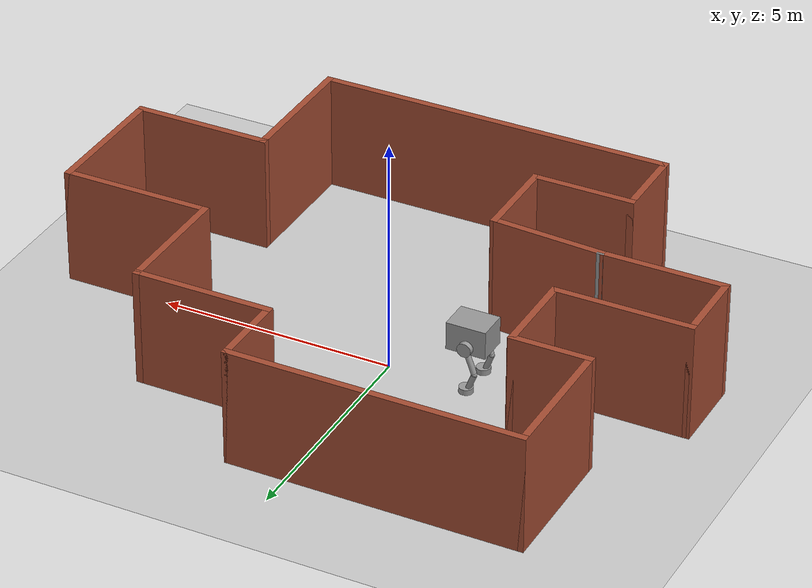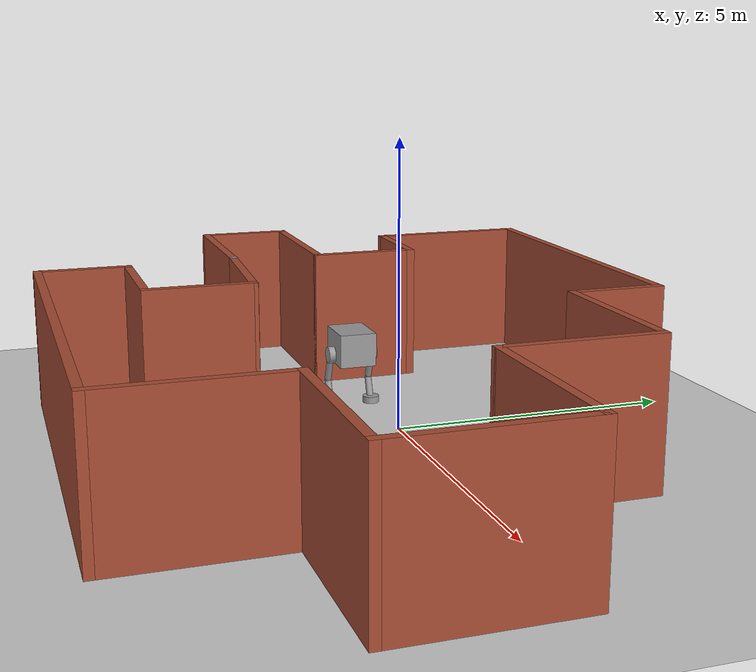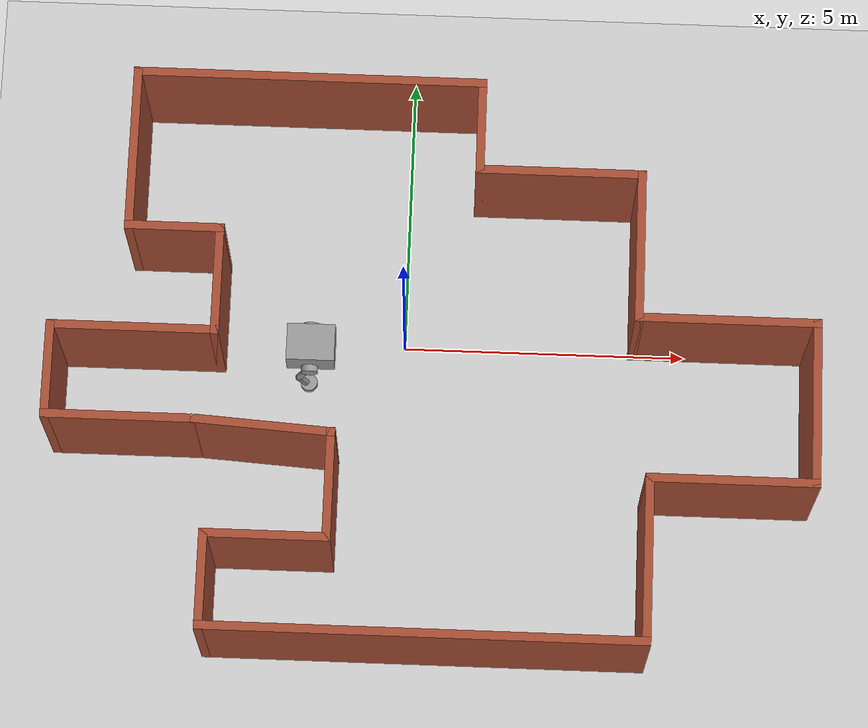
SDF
<?xml version="1.0" ?>

<sdf version="1.4">

  <world name="default">

    <include>
      <uri>model://ground_plane</uri>
    </include>

    <!-- My world -->
    <include>
      <uri>model://worlds/myworld</uri>
    </include>

    <!-- My robot -->
    <include>
      <uri>model://robot/model</uri>
    </include>

    <!-- Light source -->
    <include>
      <uri>model://sun</uri>
    </include>

    <!-- World camera -->
    <gui fullscreen='0'>
      <camera name='world_camera'>
        <pose>4.927360 -4.376610 3.740080 0.000000 0.275643 2.356190</pose>
        <view_controller>orbit</view_controller>
      </camera>
    </gui>

  </world>
</sdf>

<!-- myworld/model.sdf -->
<sdf version='1.7'>
  <model name='myworld'>
    <pose>0.52 -0.73 0 0 -0 0</pose>
    <link name='Wall_0'>
      <collision name='Wall_0_Collision'>
        <geometry>
          <box>
            <size>2.75 0.15 2.5</size>
          </box>
        </geometry>
        <pose>0 0 1.25 0 -0 0</pose>
      </collision>
      <visual name='Wall_0_Visual'>
        <pose>0 0 1.25 0 -0 0</pose>
        <geometry>
          <box>
            <size>2.75 0.15 2.5</size>
          </box>
        </geometry>
        <material>
          <script>
            <uri>file://media/materials/scripts/gazebo.material</uri>
            <name>Gazebo/Bricks</name>
          </script>
          <ambient>1 1 1 1</ambient>
        </material>
        <meta>
          <layer>0</layer>
        </meta>
      </visual>
      <pose>-5.35 -1.35 0 0 -0 3.14159</pose>
    </link>
    <link name='Wall_1'>
      <collision name='Wall_1_Collision'>
        <geometry>
          <box>
            <size>1.75 0.15 2.5</size>
          </box>
        </geometry>
        <pose>0 0 1.25 0 -0 0</pose>
      </collision>
      <visual name='Wall_1_Visual'>
        <pose>0 0 1.25 0 -0 0</pose>
        <geometry>
          <box>
            <size>1.75 0.15 2.5</size>
          </box>
        </geometry>
        <material>
          <script>
            <uri>file://media/materials/scripts/gazebo.material</uri>
            <name>Gazebo/Bricks</name>
          </script>
          <ambient>1 1 1 1</ambient>
        </material>
        <meta>
          <layer>0</layer>
        </meta>
      </visual>
      <pose>-6.65 -0.55 0 0 -0 1.5708</pose>
    </link>
    <link name='Wall_10'>
      <collision name='Wall_10_Collision'>
        <geometry>
          <box>
            <size>3.25 0.15 2.5</size>
          </box>
        </geometry>
        <pose>0 0 1.25 0 -0 0</pose>
      </collision>
      <visual name='Wall_10_Visual'>
        <pose>0 0 1.25 0 -0 0</pose>
        <geometry>
          <box>
            <size>3.25 0.15 2.5</size>
          </box>
        </geometry>
        <material>
          <script>
            <uri>file://media/materials/scripts/gazebo.material</uri>
            <name>Gazebo/Bricks</name>
          </script>
          <ambient>1 1 1 1</ambient>
        </material>
        <meta>
          <layer>0</layer>
        </meta>
      </visual>
      <pose>5.1 0.75 0 0 -0 0</pose>
    </link>
    <link name='Wall_11'>
      <collision name='Wall_11_Collision'>
        <geometry>
          <box>
            <size>3 0.15 2.5</size>
          </box>
        </geometry>
        <pose>0 0 1.25 0 -0 0</pose>
      </collision>
      <visual name='Wall_11_Visual'>
        <pose>0 0 1.25 0 -0 0</pose>
        <geometry>
          <box>
            <size>3 0.15 2.5</size>
          </box>
        </geometry>
        <material>
          <script>
            <uri>file://media/materials/scripts/gazebo.material</uri>
            <name>Gazebo/Bricks</name>
          </script>
          <ambient>1 1 1 1</ambient>
        </material>
        <meta>
          <layer>0</layer>
        </meta>
      </visual>
      <pose>6.65 -0.675 0 0 -0 -1.5708</pose>
    </link>
    <link name='Wall_12'>
      <collision name='Wall_12_Collision'>
        <geometry>
          <box>
            <size>3 0.15 2.5</size>
          </box>
        </geometry>
        <pose>0 0 1.25 0 -0 0</pose>
      </collision>
      <visual name='Wall_12_Visual'>
        <pose>0 0 1.25 0 -0 0</pose>
        <geometry>
          <box>
            <size>3 0.15 2.5</size>
          </box>
        </geometry>
        <material>
          <script>
            <uri>file://media/materials/scripts/gazebo.material</uri>
            <name>Gazebo/Bricks</name>
          </script>
          <ambient>1 1 1 1</ambient>
        </material>
        <meta>
          <layer>0</layer>
        </meta>
      </visual>
      <pose>5.225 -2.1 0 0 -0 3.14159</pose>
    </link>
    <link name='Wall_13'>
      <collision name='Wall_13_Collision'>
        <geometry>
          <box>
            <size>3 0.15 2.5</size>
          </box>
        </geometry>
        <pose>0 0 1.25 0 -0 0</pose>
      </collision>
      <visual name='Wall_13_Visual'>
        <pose>0 0 1.25 0 -0 0</pose>
        <geometry>
          <box>
            <size>3 0.15 2.5</size>
          </box>
        </geometry>
        <material>
          <script>
            <uri>file://media/materials/scripts/gazebo.material</uri>
            <name>Gazebo/Bricks</name>
          </script>
          <ambient>1 1 1 1</ambient>
        </material>
        <meta>
          <layer>0</layer>
        </meta>
      </visual>
      <pose>3.8 -3.525 0 0 -0 -1.5708</pose>
    </link>
    <link name='Wall_14'>
      <collision name='Wall_14_Collision'>
        <geometry>
          <box>
            <size>7.75 0.15 2.5</size>
          </box>
        </geometry>
        <pose>0 0 1.25 0 -0 0</pose>
      </collision>
      <visual name='Wall_14_Visual'>
        <pose>0 0 1.25 0 -0 0</pose>
        <geometry>
          <box>
            <size>7.75 0.15 2.5</size>
          </box>
        </geometry>
        <material>
          <script>
            <uri>file://media/materials/scripts/gazebo.material</uri>
            <name>Gazebo/Bricks</name>
          </script>
          <ambient>1 1 1 1</ambient>
        </material>
        <meta>
          <layer>0</layer>
        </meta>
      </visual>
      <pose>0 -4.95 0 0 -0 3.14159</pose>
    </link>
    <link name='Wall_15'>
      <collision name='Wall_15_Collision'>
        <geometry>
          <box>
            <size>1.75 0.15 2.5</size>
          </box>
        </geometry>
        <pose>0 0 1.25 0 -0 0</pose>
      </collision>
      <visual name='Wall_15_Visual'>
        <pose>0 0 1.25 0 -0 0</pose>
        <geometry>
          <box>
            <size>1.75 0.15 2.5</size>
          </box>
        </geometry>
        <material>
          <script>
            <uri>file://media/materials/scripts/gazebo.material</uri>
            <name>Gazebo/Bricks</name>
          </script>
          <ambient>1 1 1 1</ambient>
        </material>
        <meta>
          <layer>0</layer>
        </meta>
      </visual>
      <pose>-3.8 -4.15 0 0 -0 1.5708</pose>
    </link>
    <link name='Wall_16'>
      <collision name='Wall_16_Collision'>
        <geometry>
          <box>
            <size>2.25 0.15 2.5</size>
          </box>
        </geometry>
        <pose>0 0 1.25 0 -0 0</pose>
      </collision>
      <visual name='Wall_16_Visual'>
        <pose>0 0 1.25 0 -0 0</pose>
        <geometry>
          <box>
            <size>2.25 0.15 2.5</size>
          </box>
        </geometry>
        <material>
          <script>
            <uri>file://media/materials/scripts/gazebo.material</uri>
            <name>Gazebo/Bricks</name>
          </script>
          <ambient>1 1 1 1</ambient>
        </material>
        <meta>
          <layer>0</layer>
        </meta>
      </visual>
      <pose>-2.75 -3.35 0 0 -0 0</pose>
    </link>
    <link name='Wall_17'>
      <collision name='Wall_17_Collision'>
        <geometry>
          <box>
            <size>2 0.15 2.5</size>
          </box>
        </geometry>
        <pose>0 0 1.25 0 -0 0</pose>
      </collision>
      <visual name='Wall_17_Visual'>
        <pose>0 0 1.25 0 -0 0</pose>
        <geometry>
          <box>
            <size>2 0.15 2.5</size>
          </box>
        </geometry>
        <material>
          <script>
            <uri>file://media/materials/scripts/gazebo.material</uri>
            <name>Gazebo/Bricks</name>
          </script>
          <ambient>1 1 1 1</ambient>
        </material>
        <meta>
          <layer>0</layer>
        </meta>
      </visual>
      <pose>-1.7 -2.425 0 0 -0 1.5708</pose>
    </link>
    <link name='Wall_18'>
      <collision name='Wall_18_Collision'>
        <geometry>
          <box>
            <size>2.50478 0.15 2.5</size>
          </box>
        </geometry>
        <pose>0 0 1.25 0 -0 0</pose>
      </collision>
      <visual name='Wall_18_Visual'>
        <pose>0 0 1.25 0 -0 0</pose>
        <geometry>
          <box>
            <size>2.50478 0.15 2.5</size>
          </box>
        </geometry>
        <material>
          <script>
            <uri>file://media/materials/scripts/gazebo.material</uri>
            <name>Gazebo/Bricks</name>
          </script>
          <ambient>1 1 1 1</ambient>
        </material>
        <meta>
          <layer>0</layer>
        </meta>
      </visual>
      <pose>-2.875 -1.425 0 0 -0 3.07785</pose>
    </link>
    <link name='Wall_19'>
      <collision name='Wall_19_Collision'>
        <geometry>
          <box>
            <size>0.15 0.15 2.5</size>
          </box>
        </geometry>
        <pose>0 0 1.25 0 -0 0</pose>
      </collision>
      <visual name='Wall_19_Visual'>
        <pose>0 0 1.25 0 -0 0</pose>
        <geometry>
          <box>
            <size>0.15 0.15 2.5</size>
          </box>
        </geometry>
        <material>
          <script>
            <uri>file://media/materials/scripts/gazebo.material</uri>
            <name>Gazebo/Grey</name>
          </script>
          <ambient>1 1 1 1</ambient>
        </material>
        <meta>
          <layer>0</layer>
        </meta>
      </visual>
      <pose>-4.05 -1.35 0 0 -0 0</pose>
    </link>
    <link name='Wall_2'>
      <collision name='Wall_2_Collision'>
        <geometry>
          <box>
            <size>3 0.15 2.5</size>
          </box>
        </geometry>
        <pose>0 0 1.25 0 -0 0</pose>
      </collision>
      <visual name='Wall_2_Visual'>
        <pose>0 0 1.25 0 -0 0</pose>
        <geometry>
          <box>
            <size>3 0.15 2.5</size>
          </box>
        </geometry>
        <material>
          <script>
            <uri>file://media/materials/scripts/gazebo.material</uri>
            <name>Gazebo/Bricks</name>
          </script>
          <ambient>1 1 1 1</ambient>
        </material>
        <meta>
          <layer>0</layer>
        </meta>
      </visual>
      <pose>-5.225 0.25 0 0 -0 0</pose>
    </link>
    <link name='Wall_3'>
      <collision name='Wall_3_Collision'>
        <geometry>
          <box>
            <size>2 0.15 2.5</size>
          </box>
        </geometry>
        <pose>0 0 1.25 0 -0 0</pose>
      </collision>
      <visual name='Wall_3_Visual'>
        <pose>0 0 1.25 0 -0 0</pose>
        <geometry>
          <box>
            <size>2 0.15 2.5</size>
          </box>
        </geometry>
        <material>
          <script>
            <uri>file://media/materials/scripts/gazebo.material</uri>
            <name>Gazebo/Bricks</name>
          </script>
          <ambient>1 1 1 1</ambient>
        </material>
        <meta>
          <layer>0</layer>
        </meta>
      </visual>
      <pose>-3.8 1.175 0 0 -0 1.5708</pose>
    </link>
    <link name='Wall_4'>
      <collision name='Wall_4_Collision'>
        <geometry>
          <box>
            <size>1.75 0.15 2.5</size>
          </box>
        </geometry>
        <pose>0 0 1.25 0 -0 0</pose>
      </collision>
      <visual name='Wall_4_Visual'>
        <pose>0 0 1.25 0 -0 0</pose>
        <geometry>
          <box>
            <size>1.75 0.15 2.5</size>
          </box>
        </geometry>
        <material>
          <script>
            <uri>file://media/materials/scripts/gazebo.material</uri>
            <name>Gazebo/Bricks</name>
          </script>
          <ambient>1 1 1 1</ambient>
        </material>
        <meta>
          <layer>0</layer>
        </meta>
      </visual>
      <pose>-4.6 2.1 0 0 -0 3.14159</pose>
    </link>
    <link name='Wall_5'>
      <collision name='Wall_5_Collision'>
        <geometry>
          <box>
            <size>3 0.15 2.5</size>
          </box>
        </geometry>
        <pose>0 0 1.25 0 -0 0</pose>
      </collision>
      <visual name='Wall_5_Visual'>
        <pose>0 0 1.25 0 -0 0</pose>
        <geometry>
          <box>
            <size>3 0.15 2.5</size>
          </box>
        </geometry>
        <material>
          <script>
            <uri>file://media/materials/scripts/gazebo.material</uri>
            <name>Gazebo/Bricks</name>
          </script>
          <ambient>1 1 1 1</ambient>
        </material>
        <meta>
          <layer>0</layer>
        </meta>
      </visual>
      <pose>-5.4 3.525 0 0 -0 1.5708</pose>
    </link>
    <link name='Wall_6'>
      <collision name='Wall_6_Collision'>
        <geometry>
          <box>
            <size>6.25 0.15 2.5</size>
          </box>
        </geometry>
        <pose>0 0 1.25 0 -0 0</pose>
      </collision>
      <visual name='Wall_6_Visual'>
        <pose>0 0 1.25 0 -0 0</pose>
        <geometry>
          <box>
            <size>6.25 0.15 2.5</size>
          </box>
        </geometry>
        <material>
          <script>
            <uri>file://media/materials/scripts/gazebo.material</uri>
            <name>Gazebo/Bricks</name>
          </script>
          <ambient>1 1 1 1</ambient>
        </material>
        <meta>
          <layer>0</layer>
        </meta>
      </visual>
      <pose>-2.35 4.95 0 0 -0 0</pose>
    </link>
    <link name='Wall_7'>
      <collision name='Wall_7_Collision'>
        <geometry>
          <box>
            <size>1.75 0.15 2.5</size>
          </box>
        </geometry>
        <pose>0 0 1.25 0 -0 0</pose>
      </collision>
      <visual name='Wall_7_Visual'>
        <pose>0 0 1.25 0 -0 0</pose>
        <geometry>
          <box>
            <size>1.75 0.15 2.5</size>
          </box>
        </geometry>
        <material>
          <script>
            <uri>file://media/materials/scripts/gazebo.material</uri>
            <name>Gazebo/Bricks</name>
          </script>
          <ambient>1 1 1 1</ambient>
        </material>
        <meta>
          <layer>0</layer>
        </meta>
      </visual>
      <pose>0.7 4.15 0 0 -0 -1.5708</pose>
    </link>
    <link name='Wall_8'>
      <collision name='Wall_8_Collision'>
        <geometry>
          <box>
            <size>3 0.15 2.5</size>
          </box>
        </geometry>
        <pose>0 0 1.25 0 -0 0</pose>
      </collision>
      <visual name='Wall_8_Visual'>
        <pose>0 0 1.25 0 -0 0</pose>
        <geometry>
          <box>
            <size>3 0.15 2.5</size>
          </box>
        </geometry>
        <material>
          <script>
            <uri>file://media/materials/scripts/gazebo.material</uri>
            <name>Gazebo/Bricks</name>
          </script>
          <ambient>1 1 1 1</ambient>
        </material>
        <meta>
          <layer>0</layer>
        </meta>
      </visual>
      <pose>2.125 3.35 0 0 -0 0</pose>
    </link>
    <link name='Wall_9'>
      <collision name='Wall_9_Collision'>
        <geometry>
          <box>
            <size>2.75 0.15 2.5</size>
          </box>
        </geometry>
        <pose>0 0 1.25 0 -0 0</pose>
      </collision>
      <visual name='Wall_9_Visual'>
        <pose>0 0 1.25 0 -0 0</pose>
        <geometry>
          <box>
            <size>2.75 0.15 2.5</size>
          </box>
        </geometry>
        <material>
          <script>
            <uri>file://media/materials/scripts/gazebo.material</uri>
            <name>Gazebo/Bricks</name>
          </script>
          <ambient>1 1 1 1</ambient>
        </material>
        <meta>
          <layer>0</layer>
        </meta>
      </visual>
      <pose>3.55 2.05 0 0 -0 -1.5708</pose>
    </link>
    <static>1</static>
  </model>
</sdf>

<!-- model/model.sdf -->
<sdf version='1.7'>
  <model name='model'>
    <link name='link_0_clone'>
      <inertial>
        <mass>1</mass>
        <inertia>
          <ixx>0.145833</ixx>
          <ixy>0</ixy>
          <ixz>0</ixz>
          <iyy>0.145833</iyy>
          <iyz>0</iyz>
          <izz>0.125</izz>
        </inertia>
        <pose>0 0 0 0 -0 0</pose>
      </inertial>
      <pose>-1.70371 0.05719 0.046277 0 -0 0</pose>
      <gravity>1</gravity>
      <self_collide>0</self_collide>
      <kinematic>0</kinematic>
      <enable_wind>0</enable_wind>
      <visual name='visual'>
        <pose>0 0 0 0 -0 0</pose>
        <geometry>
          <cylinder>
            <radius>0.15</radius>
            <length>0.12</length>
          </cylinder>
        </geometry>
        <material>
          <lighting>1</lighting>
          <script>
            <uri>file://media/materials/scripts/gazebo.material</uri>
            <name>Gazebo/Grey</name>
          </script>
          <shader type='pixel'>
            <normal_map>__default__</normal_map>
          </shader>
          <ambient>0.3 0.3 0.3 1</ambient>
          <diffuse>0.7 0.7 0.7 1</diffuse>
          <specular>0.01 0.01 0.01 1</specular>
          <emissive>0 0 0 1</emissive>
        </material>
        <transparency>0</transparency>
        <cast_shadows>1</cast_shadows>
      </visual>
      <collision name='collision'>
        <laser_retro>0</laser_retro>
        <max_contacts>10</max_contacts>
        <pose>0 0 0 0 -0 0</pose>
        <geometry>
          <cylinder>
            <radius>0.15</radius>
            <length>0.12</length>
          </cylinder>
        </geometry>
        <surface>
          <friction>
            <ode>
              <mu>1</mu>
              <mu2>1</mu2>
              <fdir1>0 0 0</fdir1>
              <slip1>0</slip1>
              <slip2>0</slip2>
            </ode>
            <torsional>
              <coefficient>1</coefficient>
              <patch_radius>0</patch_radius>
              <surface_radius>0</surface_radius>
              <use_patch_radius>1</use_patch_radius>
              <ode>
                <slip>0</slip>
              </ode>
            </torsional>
          </friction>
          <bounce>
            <restitution_coefficient>0</restitution_coefficient>
            <threshold>1e+06</threshold>
          </bounce>
          <contact>
            <collide_without_contact>0</collide_without_contact>
            <collide_without_contact_bitmask>1</collide_without_contact_bitmask>
            <collide_bitmask>1</collide_bitmask>
            <ode>
              <soft_cfm>0</soft_cfm>
              <soft_erp>0.2</soft_erp>
              <kp>1e+13</kp>
              <kd>1</kd>
              <max_vel>0.01</max_vel>
              <min_depth>0</min_depth>
            </ode>
            <bullet>
              <split_impulse>1</split_impulse>
              <split_impulse_penetration_threshold>-0.01</split_impulse_penetration_threshold>
              <soft_cfm>0</soft_cfm>
              <soft_erp>0.2</soft_erp>
              <kp>1e+13</kp>
              <kd>1</kd>
            </bullet>
          </contact>
        </surface>
      </collision>
    </link>
    <link name='link_0_clone_clone'>
      <inertial>
        <mass>1</mass>
        <inertia>
          <ixx>0.145833</ixx>
          <ixy>0</ixy>
          <ixz>0</ixz>
          <iyy>0.145833</iyy>
          <iyz>0</iyz>
          <izz>0.125</izz>
        </inertia>
        <pose>0 0 0 0 -0 0</pose>
      </inertial>
      <pose>-1.70371 -0.715173 0.046277 0 -0 0</pose>
      <gravity>1</gravity>
      <self_collide>0</self_collide>
      <kinematic>0</kinematic>
      <enable_wind>0</enable_wind>
      <visual name='visual'>
        <pose>0 0 0 0 -0 0</pose>
        <geometry>
          <cylinder>
            <radius>0.15</radius>
            <length>0.12</length>
          </cylinder>
        </geometry>
        <material>
          <lighting>1</lighting>
          <script>
            <uri>file://media/materials/scripts/gazebo.material</uri>
            <name>Gazebo/Grey</name>
          </script>
          <shader type='pixel'>
            <normal_map>__default__</normal_map>
          </shader>
          <ambient>0.3 0.3 0.3 1</ambient>
          <diffuse>0.7 0.7 0.7 1</diffuse>
          <specular>0.01 0.01 0.01 1</specular>
          <emissive>0 0 0 1</emissive>
        </material>
        <transparency>0</transparency>
        <cast_shadows>1</cast_shadows>
      </visual>
      <collision name='collision'>
        <laser_retro>0</laser_retro>
        <max_contacts>10</max_contacts>
        <pose>0 0 0 0 -0 0</pose>
        <geometry>
          <cylinder>
            <radius>0.15</radius>
            <length>0.12</length>
          </cylinder>
        </geometry>
        <surface>
          <friction>
            <ode>
              <mu>1</mu>
              <mu2>1</mu2>
              <fdir1>0 0 0</fdir1>
              <slip1>0</slip1>
              <slip2>0</slip2>
            </ode>
            <torsional>
              <coefficient>1</coefficient>
              <patch_radius>0</patch_radius>
              <surface_radius>0</surface_radius>
              <use_patch_radius>1</use_patch_radius>
              <ode>
                <slip>0</slip>
              </ode>
            </torsional>
          </friction>
          <bounce>
            <restitution_coefficient>0</restitution_coefficient>
            <threshold>1e+06</threshold>
          </bounce>
          <contact>
            <collide_without_contact>0</collide_without_contact>
            <collide_without_contact_bitmask>1</collide_without_contact_bitmask>
            <collide_bitmask>1</collide_bitmask>
            <ode>
              <soft_cfm>0</soft_cfm>
              <soft_erp>0.2</soft_erp>
              <kp>1e+13</kp>
              <kd>1</kd>
              <max_vel>0.01</max_vel>
              <min_depth>0</min_depth>
            </ode>
            <bullet>
              <split_impulse>1</split_impulse>
              <split_impulse_penetration_threshold>-0.01</split_impulse_penetration_threshold>
              <soft_cfm>0</soft_cfm>
              <soft_erp>0.2</soft_erp>
              <kp>1e+13</kp>
              <kd>1</kd>
            </bullet>
          </contact>
        </surface>
      </collision>
    </link>
    <link name='link_1_clone_0'>
      <inertial>
        <mass>1</mass>
        <inertia>
          <ixx>0.145833</ixx>
          <ixy>0</ixy>
          <ixz>0</ixz>
          <iyy>0.145833</iyy>
          <iyz>0</iyz>
          <izz>0.125</izz>
        </inertia>
        <pose>0 0 0 0 -0 0</pose>
      </inertial>
      <pose>-1.79935 -0.715173 0.645744 0 -0 0</pose>
      <gravity>1</gravity>
      <self_collide>0</self_collide>
      <kinematic>0</kinematic>
      <enable_wind>0</enable_wind>
      <visual name='visual'>
        <pose>0 0 0 0 0.35 0</pose>
        <geometry>
          <cylinder>
            <radius>0.06</radius>
            <length>0.4</length>
          </cylinder>
        </geometry>
        <material>
          <lighting>1</lighting>
          <script>
            <uri>file://media/materials/scripts/gazebo.material</uri>
            <name>Gazebo/Grey</name>
          </script>
          <shader type='pixel'>
            <normal_map>__default__</normal_map>
          </shader>
          <ambient>0.3 0.3 0.3 1</ambient>
          <diffuse>0.7 0.7 0.7 1</diffuse>
          <specular>0.01 0.01 0.01 1</specular>
          <emissive>0 0 0 1</emissive>
        </material>
        <transparency>0</transparency>
        <cast_shadows>1</cast_shadows>
      </visual>
      <collision name='collision'>
        <laser_retro>0</laser_retro>
        <max_contacts>10</max_contacts>
        <pose>0 0 0 0 0.35 0</pose>
        <geometry>
          <cylinder>
            <radius>0.06</radius>
            <length>0.4</length>
          </cylinder>
        </geometry>
        <surface>
          <friction>
            <ode>
              <mu>1</mu>
              <mu2>1</mu2>
              <fdir1>0 0 0</fdir1>
              <slip1>0</slip1>
              <slip2>0</slip2>
            </ode>
            <torsional>
              <coefficient>1</coefficient>
              <patch_radius>0</patch_radius>
              <surface_radius>0</surface_radius>
              <use_patch_radius>1</use_patch_radius>
              <ode>
                <slip>0</slip>
              </ode>
            </torsional>
          </friction>
          <bounce>
            <restitution_coefficient>0</restitution_coefficient>
            <threshold>1e+06</threshold>
          </bounce>
          <contact>
            <collide_without_contact>0</collide_without_contact>
            <collide_without_contact_bitmask>1</collide_without_contact_bitmask>
            <collide_bitmask>1</collide_bitmask>
            <ode>
              <soft_cfm>0</soft_cfm>
              <soft_erp>0.2</soft_erp>
              <kp>1e+13</kp>
              <kd>1</kd>
              <max_vel>0.01</max_vel>
              <min_depth>0</min_depth>
            </ode>
            <bullet>
              <split_impulse>1</split_impulse>
              <split_impulse_penetration_threshold>-0.01</split_impulse_penetration_threshold>
              <soft_cfm>0</soft_cfm>
              <soft_erp>0.2</soft_erp>
              <kp>1e+13</kp>
              <kd>1</kd>
            </bullet>
          </contact>
        </surface>
      </collision>
    </link>
    <link name='link_1_clone_0_clone'>
      <inertial>
        <mass>1</mass>
        <inertia>
          <ixx>0.145833</ixx>
          <ixy>0</ixy>
          <ixz>0</ixz>
          <iyy>0.145833</iyy>
          <iyz>0</iyz>
          <izz>0.125</izz>
        </inertia>
        <pose>0 0 0 0 -0 0</pose>
      </inertial>
      <pose>-1.8087 -0.714544 0.232355 0 -0 0</pose>
      <gravity>1</gravity>
      <self_collide>0</self_collide>
      <kinematic>0</kinematic>
      <enable_wind>0</enable_wind>
      <visual name='visual'>
        <pose>0 0 0 0 -0.35 0</pose>
        <geometry>
          <cylinder>
            <radius>0.06</radius>
            <length>0.4</length>
          </cylinder>
        </geometry>
        <material>
          <lighting>1</lighting>
          <script>
            <uri>file://media/materials/scripts/gazebo.material</uri>
            <name>Gazebo/Grey</name>
          </script>
          <shader type='pixel'>
            <normal_map>__default__</normal_map>
          </shader>
          <ambient>0.3 0.3 0.3 1</ambient>
          <diffuse>0.7 0.7 0.7 1</diffuse>
          <specular>0.01 0.01 0.01 1</specular>
          <emissive>0 0 0 1</emissive>
        </material>
        <transparency>0</transparency>
        <cast_shadows>1</cast_shadows>
      </visual>
      <collision name='collision'>
        <laser_retro>0</laser_retro>
        <max_contacts>10</max_contacts>
        <pose>0 0 0 0 -0.35 0</pose>
        <geometry>
          <cylinder>
            <radius>0.06</radius>
            <length>0.4</length>
          </cylinder>
        </geometry>
        <surface>
          <friction>
            <ode>
              <mu>1</mu>
              <mu2>1</mu2>
              <fdir1>0 0 0</fdir1>
              <slip1>0</slip1>
              <slip2>0</slip2>
            </ode>
            <torsional>
              <coefficient>1</coefficient>
              <patch_radius>0</patch_radius>
              <surface_radius>0</surface_radius>
              <use_patch_radius>1</use_patch_radius>
              <ode>
                <slip>0</slip>
              </ode>
            </torsional>
          </friction>
          <bounce>
            <restitution_coefficient>0</restitution_coefficient>
            <threshold>1e+06</threshold>
          </bounce>
          <contact>
            <collide_without_contact>0</collide_without_contact>
            <collide_without_contact_bitmask>1</collide_without_contact_bitmask>
            <collide_bitmask>1</collide_bitmask>
            <ode>
              <soft_cfm>0</soft_cfm>
              <soft_erp>0.2</soft_erp>
              <kp>1e+13</kp>
              <kd>1</kd>
              <max_vel>0.01</max_vel>
              <min_depth>0</min_depth>
            </ode>
            <bullet>
              <split_impulse>1</split_impulse>
              <split_impulse_penetration_threshold>-0.01</split_impulse_penetration_threshold>
              <soft_cfm>0</soft_cfm>
              <soft_erp>0.2</soft_erp>
              <kp>1e+13</kp>
              <kd>1</kd>
            </bullet>
          </contact>
        </surface>
      </collision>
    </link>
    <link name='link_1_clone_0_clone_0'>
      <inertial>
        <mass>1</mass>
        <inertia>
          <ixx>0.145833</ixx>
          <ixy>0</ixy>
          <ixz>0</ixz>
          <iyy>0.145833</iyy>
          <iyz>0</iyz>
          <izz>0.125</izz>
        </inertia>
        <pose>0 0 0 0 -0 0</pose>
      </inertial>
      <pose>-1.79935 0.058729 0.645744 0 -0 0</pose>
      <gravity>1</gravity>
      <self_collide>0</self_collide>
      <kinematic>0</kinematic>
      <enable_wind>0</enable_wind>
      <visual name='visual'>
        <pose>0 0 0 0 0.35 0</pose>
        <geometry>
          <cylinder>
            <radius>0.06</radius>
            <length>0.4</length>
          </cylinder>
        </geometry>
        <material>
          <lighting>1</lighting>
          <script>
            <uri>file://media/materials/scripts/gazebo.material</uri>
            <name>Gazebo/Grey</name>
          </script>
          <shader type='pixel'>
            <normal_map>__default__</normal_map>
          </shader>
          <ambient>0.3 0.3 0.3 1</ambient>
          <diffuse>0.7 0.7 0.7 1</diffuse>
          <specular>0.01 0.01 0.01 1</specular>
          <emissive>0 0 0 1</emissive>
        </material>
        <transparency>0</transparency>
        <cast_shadows>1</cast_shadows>
      </visual>
      <collision name='collision'>
        <laser_retro>0</laser_retro>
        <max_contacts>10</max_contacts>
        <pose>0 0 0 0 0.35 0</pose>
        <geometry>
          <cylinder>
            <radius>0.06</radius>
            <length>0.4</length>
          </cylinder>
        </geometry>
        <surface>
          <friction>
            <ode>
              <mu>1</mu>
              <mu2>1</mu2>
              <fdir1>0 0 0</fdir1>
              <slip1>0</slip1>
              <slip2>0</slip2>
            </ode>
            <torsional>
              <coefficient>1</coefficient>
              <patch_radius>0</patch_radius>
              <surface_radius>0</surface_radius>
              <use_patch_radius>1</use_patch_radius>
              <ode>
                <slip>0</slip>
              </ode>
            </torsional>
          </friction>
          <bounce>
            <restitution_coefficient>0</restitution_coefficient>
            <threshold>1e+06</threshold>
          </bounce>
          <contact>
            <collide_without_contact>0</collide_without_contact>
            <collide_without_contact_bitmask>1</collide_without_contact_bitmask>
            <collide_bitmask>1</collide_bitmask>
            <ode>
              <soft_cfm>0</soft_cfm>
              <soft_erp>0.2</soft_erp>
              <kp>1e+13</kp>
              <kd>1</kd>
              <max_vel>0.01</max_vel>
              <min_depth>0</min_depth>
            </ode>
            <bullet>
              <split_impulse>1</split_impulse>
              <split_impulse_penetration_threshold>-0.01</split_impulse_penetration_threshold>
              <soft_cfm>0</soft_cfm>
              <soft_erp>0.2</soft_erp>
              <kp>1e+13</kp>
              <kd>1</kd>
            </bullet>
          </contact>
        </surface>
      </collision>
    </link>
    <link name='link_1_clone_0_clone_clone'>
      <inertial>
        <mass>1</mass>
        <inertia>
          <ixx>0.145833</ixx>
          <ixy>0</ixy>
          <ixz>0</ixz>
          <iyy>0.145833</iyy>
          <iyz>0</iyz>
          <izz>0.125</izz>
        </inertia>
        <pose>0 0 0 0 -0 0</pose>
      </inertial>
      <pose>-1.8087 0.057646 0.232355 0 -0 0</pose>
      <gravity>1</gravity>
      <self_collide>0</self_collide>
      <kinematic>0</kinematic>
      <enable_wind>0</enable_wind>
      <visual name='visual'>
        <pose>0 0 0 0 -0.35 0</pose>
        <geometry>
          <cylinder>
            <radius>0.06</radius>
            <length>0.4</length>
          </cylinder>
        </geometry>
        <material>
          <lighting>1</lighting>
          <script>
            <uri>file://media/materials/scripts/gazebo.material</uri>
            <name>Gazebo/Grey</name>
          </script>
          <shader type='pixel'>
            <normal_map>__default__</normal_map>
          </shader>
          <ambient>0.3 0.3 0.3 1</ambient>
          <diffuse>0.7 0.7 0.7 1</diffuse>
          <specular>0.01 0.01 0.01 1</specular>
          <emissive>0 0 0 1</emissive>
        </material>
        <transparency>0</transparency>
        <cast_shadows>1</cast_shadows>
      </visual>
      <collision name='collision'>
        <laser_retro>0</laser_retro>
        <max_contacts>10</max_contacts>
        <pose>0 0 0 0 -0.35 0</pose>
        <geometry>
          <cylinder>
            <radius>0.06</radius>
            <length>0.4</length>
          </cylinder>
        </geometry>
        <surface>
          <friction>
            <ode>
              <mu>1</mu>
              <mu2>1</mu2>
              <fdir1>0 0 0</fdir1>
              <slip1>0</slip1>
              <slip2>0</slip2>
            </ode>
            <torsional>
              <coefficient>1</coefficient>
              <patch_radius>0</patch_radius>
              <surface_radius>0</surface_radius>
              <use_patch_radius>1</use_patch_radius>
              <ode>
                <slip>0</slip>
              </ode>
            </torsional>
          </friction>
          <bounce>
            <restitution_coefficient>0</restitution_coefficient>
            <threshold>1e+06</threshold>
          </bounce>
          <contact>
            <collide_without_contact>0</collide_without_contact>
            <collide_without_contact_bitmask>1</collide_without_contact_bitmask>
            <collide_bitmask>1</collide_bitmask>
            <ode>
              <soft_cfm>0</soft_cfm>
              <soft_erp>0.2</soft_erp>
              <kp>1e+13</kp>
              <kd>1</kd>
              <max_vel>0.01</max_vel>
              <min_depth>0</min_depth>
            </ode>
            <bullet>
              <split_impulse>1</split_impulse>
              <split_impulse_penetration_threshold>-0.01</split_impulse_penetration_threshold>
              <soft_cfm>0</soft_cfm>
              <soft_erp>0.2</soft_erp>
              <kp>1e+13</kp>
              <kd>1</kd>
            </bullet>
          </contact>
        </surface>
      </collision>
    </link>
    <link name='link_2_clone'>
      <inertial>
        <mass>1</mass>
        <inertia>
          <ixx>0.145833</ixx>
          <ixy>0</ixy>
          <ixz>0</ixz>
          <iyy>0.145833</iyy>
          <iyz>0</iyz>
          <izz>0.125</izz>
        </inertia>
        <pose>0 0 0 0 -0 0</pose>
      </inertial>
      <pose>-1.66905 0.061405 0.956276 0 -0 0</pose>
      <gravity>1</gravity>
      <self_collide>0</self_collide>
      <kinematic>0</kinematic>
      <enable_wind>0</enable_wind>
      <visual name='visual'>
        <pose>0 0 0 1.5708 -0 0</pose>
        <geometry>
          <cylinder>
            <radius>0.15</radius>
            <length>0.12</length>
          </cylinder>
        </geometry>
        <material>
          <lighting>1</lighting>
          <script>
            <uri>file://media/materials/scripts/gazebo.material</uri>
            <name>Gazebo/Grey</name>
          </script>
          <shader type='pixel'>
            <normal_map>__default__</normal_map>
          </shader>
          <ambient>0.3 0.3 0.3 1</ambient>
          <diffuse>0.7 0.7 0.7 1</diffuse>
          <specular>0.01 0.01 0.01 1</specular>
          <emissive>0 0 0 1</emissive>
        </material>
        <transparency>0</transparency>
        <cast_shadows>1</cast_shadows>
      </visual>
      <collision name='collision'>
        <laser_retro>0</laser_retro>
        <max_contacts>10</max_contacts>
        <pose>0 0 0 1.5708 -0 0</pose>
        <geometry>
          <cylinder>
            <radius>0.15</radius>
            <length>0.12</length>
          </cylinder>
        </geometry>
        <surface>
          <friction>
            <ode>
              <mu>1</mu>
              <mu2>1</mu2>
              <fdir1>0 0 0</fdir1>
              <slip1>0</slip1>
              <slip2>0</slip2>
            </ode>
            <torsional>
              <coefficient>1</coefficient>
              <patch_radius>0</patch_radius>
              <surface_radius>0</surface_radius>
              <use_patch_radius>1</use_patch_radius>
              <ode>
                <slip>0</slip>
              </ode>
            </torsional>
          </friction>
          <bounce>
            <restitution_coefficient>0</restitution_coefficient>
            <threshold>1e+06</threshold>
          </bounce>
          <contact>
            <collide_without_contact>0</collide_without_contact>
            <collide_without_contact_bitmask>1</collide_without_contact_bitmask>
            <collide_bitmask>1</collide_bitmask>
            <ode>
              <soft_cfm>0</soft_cfm>
              <soft_erp>0.2</soft_erp>
              <kp>1e+13</kp>
              <kd>1</kd>
              <max_vel>0.01</max_vel>
              <min_depth>0</min_depth>
            </ode>
            <bullet>
              <split_impulse>1</split_impulse>
              <split_impulse_penetration_threshold>-0.01</split_impulse_penetration_threshold>
              <soft_cfm>0</soft_cfm>
              <soft_erp>0.2</soft_erp>
              <kp>1e+13</kp>
              <kd>1</kd>
            </bullet>
          </contact>
        </surface>
      </collision>
    </link>
    <link name='link_2_clone_0'>
      <inertial>
        <mass>1</mass>
        <inertia>
          <ixx>0.145833</ixx>
          <ixy>0</ixy>
          <ixz>0</ixz>
          <iyy>0.145833</iyy>
          <iyz>0</iyz>
          <izz>0.125</izz>
        </inertia>
        <pose>0 0 0 0 -0 0</pose>
      </inertial>
      <pose>-1.66905 -0.715172 0.956276 0 -0 0</pose>
      <gravity>1</gravity>
      <self_collide>0</self_collide>
      <kinematic>0</kinematic>
      <enable_wind>0</enable_wind>
      <visual name='visual'>
        <pose>0 0 0 1.5708 -0 0</pose>
        <geometry>
          <cylinder>
            <radius>0.15</radius>
            <length>0.12</length>
          </cylinder>
        </geometry>
        <material>
          <lighting>1</lighting>
          <script>
            <uri>file://media/materials/scripts/gazebo.material</uri>
            <name>Gazebo/Grey</name>
          </script>
          <shader type='pixel'>
            <normal_map>__default__</normal_map>
          </shader>
          <ambient>0.3 0.3 0.3 1</ambient>
          <diffuse>0.7 0.7 0.7 1</diffuse>
          <specular>0.01 0.01 0.01 1</specular>
          <emissive>0 0 0 1</emissive>
        </material>
        <transparency>0</transparency>
        <cast_shadows>1</cast_shadows>
      </visual>
      <collision name='collision'>
        <laser_retro>0</laser_retro>
        <max_contacts>10</max_contacts>
        <pose>0 0 0 1.5708 -0 0</pose>
        <geometry>
          <cylinder>
            <radius>0.15</radius>
            <length>0.12</length>
          </cylinder>
        </geometry>
        <surface>
          <friction>
            <ode>
              <mu>1</mu>
              <mu2>1</mu2>
              <fdir1>0 0 0</fdir1>
              <slip1>0</slip1>
              <slip2>0</slip2>
            </ode>
            <torsional>
              <coefficient>1</coefficient>
              <patch_radius>0</patch_radius>
              <surface_radius>0</surface_radius>
              <use_patch_radius>1</use_patch_radius>
              <ode>
                <slip>0</slip>
              </ode>
            </torsional>
          </friction>
          <bounce>
            <restitution_coefficient>0</restitution_coefficient>
            <threshold>1e+06</threshold>
          </bounce>
          <contact>
            <collide_without_contact>0</collide_without_contact>
            <collide_without_contact_bitmask>1</collide_without_contact_bitmask>
            <collide_bitmask>1</collide_bitmask>
            <ode>
              <soft_cfm>0</soft_cfm>
              <soft_erp>0.2</soft_erp>
              <kp>1e+13</kp>
              <kd>1</kd>
              <max_vel>0.01</max_vel>
              <min_depth>0</min_depth>
            </ode>
            <bullet>
              <split_impulse>1</split_impulse>
              <split_impulse_penetration_threshold>-0.01</split_impulse_penetration_threshold>
              <soft_cfm>0</soft_cfm>
              <soft_erp>0.2</soft_erp>
              <kp>1e+13</kp>
              <kd>1</kd>
            </bullet>
          </contact>
        </surface>
      </collision>
    </link>
    <link name='link_4'>
      <inertial>
        <mass>1</mass>
        <inertia>
          <ixx>0.166667</ixx>
          <ixy>0</ixy>
          <ixz>0</ixz>
          <iyy>0.166667</iyy>
          <iyz>0</iyz>
          <izz>0.166667</izz>
        </inertia>
        <pose>0 0 0 0 -0 0</pose>
      </inertial>
      <pose>-1.65199 -0.327888 1.10628 0 -0 0</pose>
      <gravity>1</gravity>
      <self_collide>0</self_collide>
      <kinematic>0</kinematic>
      <enable_wind>0</enable_wind>
      <visual name='visual'>
        <pose>0 0 0 0 -0 0</pose>
        <geometry>
          <box>
            <size>0.85 0.66 0.6</size>
          </box>
        </geometry>
        <material>
          <lighting>1</lighting>
          <script>
            <uri>file://media/materials/scripts/gazebo.material</uri>
            <name>Gazebo/Grey</name>
          </script>
          <shader type='pixel'>
            <normal_map>__default__</normal_map>
          </shader>
          <ambient>0.3 0.3 0.3 1</ambient>
          <diffuse>0.7 0.7 0.7 1</diffuse>
          <specular>0.01 0.01 0.01 1</specular>
          <emissive>0 0 0 1</emissive>
        </material>
        <transparency>0</transparency>
        <cast_shadows>1</cast_shadows>
      </visual>
      <collision name='collision'>
        <laser_retro>0</laser_retro>
        <max_contacts>10</max_contacts>
        <pose>0 0 0 0 -0 0</pose>
        <geometry>
          <box>
            <size>0.85 0.66 0.6</size>
          </box>
        </geometry>
        <surface>
          <friction>
            <ode>
              <mu>1</mu>
              <mu2>1</mu2>
              <fdir1>0 0 0</fdir1>
              <slip1>0</slip1>
              <slip2>0</slip2>
            </ode>
            <torsional>
              <coefficient>1</coefficient>
              <patch_radius>0</patch_radius>
              <surface_radius>0</surface_radius>
              <use_patch_radius>1</use_patch_radius>
              <ode>
                <slip>0</slip>
              </ode>
            </torsional>
          </friction>
          <bounce>
            <restitution_coefficient>0</restitution_coefficient>
            <threshold>1e+06</threshold>
          </bounce>
          <contact>
            <collide_without_contact>0</collide_without_contact>
            <collide_without_contact_bitmask>1</collide_without_contact_bitmask>
            <collide_bitmask>1</collide_bitmask>
            <ode>
              <soft_cfm>0</soft_cfm>
              <soft_erp>0.2</soft_erp>
              <kp>1e+13</kp>
              <kd>1</kd>
              <max_vel>0.01</max_vel>
              <min_depth>0</min_depth>
            </ode>
            <bullet>
              <split_impulse>1</split_impulse>
              <split_impulse_penetration_threshold>-0.01</split_impulse_penetration_threshold>
              <soft_cfm>0</soft_cfm>
              <soft_erp>0.2</soft_erp>
              <kp>1e+13</kp>
              <kd>1</kd>
            </bullet>
          </contact>
        </surface>
      </collision>
    </link>
    <link name='link_5_clone'>
      <inertial>
        <mass>1</mass>
        <inertia>
          <ixx>0.1</ixx>
          <ixy>0</ixy>
          <ixz>0</ixz>
          <iyy>0.1</iyy>
          <iyz>0</iyz>
          <izz>0.1</izz>
        </inertia>
        <pose>0 0 0 0 -0 0</pose>
      </inertial>
      <pose>-1.87353 -0.71583 0.431128 0 -0 0</pose>
      <gravity>1</gravity>
      <self_collide>0</self_collide>
      <kinematic>0</kinematic>
      <enable_wind>0</enable_wind>
      <visual name='visual'>
        <pose>0 0 0 0 -0 0</pose>
        <geometry>
          <sphere>
            <radius>0.06</radius>
          </sphere>
        </geometry>
        <material>
          <lighting>1</lighting>
          <script>
            <uri>file://media/materials/scripts/gazebo.material</uri>
            <name>Gazebo/Grey</name>
          </script>
          <shader type='pixel'>
            <normal_map>__default__</normal_map>
          </shader>
          <ambient>0.3 0.3 0.3 1</ambient>
          <diffuse>0.7 0.7 0.7 1</diffuse>
          <specular>0.01 0.01 0.01 1</specular>
          <emissive>0 0 0 1</emissive>
        </material>
        <transparency>0</transparency>
        <cast_shadows>1</cast_shadows>
      </visual>
      <collision name='collision'>
        <laser_retro>0</laser_retro>
        <max_contacts>10</max_contacts>
        <pose>0 0 0 0 -0 0</pose>
        <geometry>
          <sphere>
            <radius>0.06</radius>
          </sphere>
        </geometry>
        <surface>
          <friction>
            <ode>
              <mu>1</mu>
              <mu2>1</mu2>
              <fdir1>0 0 0</fdir1>
              <slip1>0</slip1>
              <slip2>0</slip2>
            </ode>
            <torsional>
              <coefficient>1</coefficient>
              <patch_radius>0</patch_radius>
              <surface_radius>0</surface_radius>
              <use_patch_radius>1</use_patch_radius>
              <ode>
                <slip>0</slip>
              </ode>
            </torsional>
          </friction>
          <bounce>
            <restitution_coefficient>0</restitution_coefficient>
            <threshold>1e+06</threshold>
          </bounce>
          <contact>
            <collide_without_contact>0</collide_without_contact>
            <collide_without_contact_bitmask>1</collide_without_contact_bitmask>
            <collide_bitmask>1</collide_bitmask>
            <ode>
              <soft_cfm>0</soft_cfm>
              <soft_erp>0.2</soft_erp>
              <kp>1e+13</kp>
              <kd>1</kd>
              <max_vel>0.01</max_vel>
              <min_depth>0</min_depth>
            </ode>
            <bullet>
              <split_impulse>1</split_impulse>
              <split_impulse_penetration_threshold>-0.01</split_impulse_penetration_threshold>
              <soft_cfm>0</soft_cfm>
              <soft_erp>0.2</soft_erp>
              <kp>1e+13</kp>
              <kd>1</kd>
            </bullet>
          </contact>
        </surface>
      </collision>
    </link>
    <link name='link_5_clone_clone'>
      <inertial>
        <mass>1</mass>
        <inertia>
          <ixx>0.1</ixx>
          <ixy>0</ixy>
          <ixz>0</ixz>
          <iyy>0.1</iyy>
          <iyz>0</iyz>
          <izz>0.1</izz>
        </inertia>
        <pose>0 0 0 0 -0 0</pose>
      </inertial>
      <pose>-1.87353 0.059552 0.431128 0 -0 0</pose>
      <gravity>1</gravity>
      <self_collide>0</self_collide>
      <kinematic>0</kinematic>
      <enable_wind>0</enable_wind>
      <visual name='visual'>
        <pose>0 0 0 0 -0 0</pose>
        <geometry>
          <sphere>
            <radius>0.06</radius>
          </sphere>
        </geometry>
        <material>
          <lighting>1</lighting>
          <script>
            <uri>file://media/materials/scripts/gazebo.material</uri>
            <name>Gazebo/Grey</name>
          </script>
          <shader type='pixel'>
            <normal_map>__default__</normal_map>
          </shader>
          <ambient>0.3 0.3 0.3 1</ambient>
          <diffuse>0.7 0.7 0.7 1</diffuse>
          <specular>0.01 0.01 0.01 1</specular>
          <emissive>0 0 0 1</emissive>
        </material>
        <transparency>0</transparency>
        <cast_shadows>1</cast_shadows>
      </visual>
      <collision name='collision'>
        <laser_retro>0</laser_retro>
        <max_contacts>10</max_contacts>
        <pose>0 0 0 0 -0 0</pose>
        <geometry>
          <sphere>
            <radius>0.06</radius>
          </sphere>
        </geometry>
        <surface>
          <friction>
            <ode>
              <mu>1</mu>
              <mu2>1</mu2>
              <fdir1>0 0 0</fdir1>
              <slip1>0</slip1>
              <slip2>0</slip2>
            </ode>
            <torsional>
              <coefficient>1</coefficient>
              <patch_radius>0</patch_radius>
              <surface_radius>0</surface_radius>
              <use_patch_radius>1</use_patch_radius>
              <ode>
                <slip>0</slip>
              </ode>
            </torsional>
          </friction>
          <bounce>
            <restitution_coefficient>0</restitution_coefficient>
            <threshold>1e+06</threshold>
          </bounce>
          <contact>
            <collide_without_contact>0</collide_without_contact>
            <collide_without_contact_bitmask>1</collide_without_contact_bitmask>
            <collide_bitmask>1</collide_bitmask>
            <ode>
              <soft_cfm>0</soft_cfm>
              <soft_erp>0.2</soft_erp>
              <kp>1e+13</kp>
              <kd>1</kd>
              <max_vel>0.01</max_vel>
              <min_depth>0</min_depth>
            </ode>
            <bullet>
              <split_impulse>1</split_impulse>
              <split_impulse_penetration_threshold>-0.01</split_impulse_penetration_threshold>
              <soft_cfm>0</soft_cfm>
              <soft_erp>0.2</soft_erp>
              <kp>1e+13</kp>
              <kd>1</kd>
            </bullet>
          </contact>
        </surface>
      </collision>
    </link>
    <joint name='link_0_clone_JOINT_0' type='fixed'>
      <parent>link_0_clone</parent>
      <child>link_1_clone_0_clone_clone</child>
      <pose>0 0 0 0 -0 0</pose>
      <physics>
        <ode>
          <limit>
            <cfm>0</cfm>
            <erp>0.2</erp>
          </limit>
          <suspension>
            <cfm>0</cfm>
            <erp>0.2</erp>
          </suspension>
        </ode>
      </physics>
    </joint>
    <joint name='link_0_clone_clone_JOINT_5' type='fixed'>
      <parent>link_0_clone_clone</parent>
      <child>link_1_clone_0_clone</child>
      <pose>0 0 0 0 -0 0</pose>
      <physics>
        <ode>
          <limit>
            <cfm>0</cfm>
            <erp>0.2</erp>
          </limit>
          <suspension>
            <cfm>0</cfm>
            <erp>0.2</erp>
          </suspension>
        </ode>
      </physics>
    </joint>
    <joint name='link_1_clone_0_JOINT_7' type='fixed'>
      <parent>link_1_clone_0</parent>
      <child>link_2_clone_0</child>
      <pose>0 0 0 0 -0 0</pose>
      <physics>
        <ode>
          <limit>
            <cfm>0</cfm>
            <erp>0.2</erp>
          </limit>
          <suspension>
            <cfm>0</cfm>
            <erp>0.2</erp>
          </suspension>
        </ode>
      </physics>
    </joint>
    <joint name='link_1_clone_0_JOINT_8' type='fixed'>
      <parent>link_1_clone_0</parent>
      <child>link_5_clone</child>
      <pose>0 0 0 0 -0 0</pose>
      <physics>
        <ode>
          <limit>
            <cfm>0</cfm>
            <erp>0.2</erp>
          </limit>
          <suspension>
            <cfm>0</cfm>
            <erp>0.2</erp>
          </suspension>
        </ode>
      </physics>
    </joint>
    <joint name='link_1_clone_0_clone_0_JOINT_2' type='fixed'>
      <parent>link_1_clone_0_clone_0</parent>
      <child>link_5_clone_clone</child>
      <pose>0 0 0 0 -0 0</pose>
      <physics>
        <ode>
          <limit>
            <cfm>0</cfm>
            <erp>0.2</erp>
          </limit>
          <suspension>
            <cfm>0</cfm>
            <erp>0.2</erp>
          </suspension>
        </ode>
      </physics>
    </joint>
    <joint name='link_1_clone_0_clone_JOINT_6' type='fixed'>
      <parent>link_1_clone_0_clone</parent>
      <child>link_5_clone</child>
      <pose>0 0 0 0 -0 0</pose>
      <physics>
        <ode>
          <limit>
            <cfm>0</cfm>
            <erp>0.2</erp>
          </limit>
          <suspension>
            <cfm>0</cfm>
            <erp>0.2</erp>
          </suspension>
        </ode>
      </physics>
    </joint>
    <joint name='link_1_clone_0_clone_clone_JOINT_1' type='fixed'>
      <parent>link_1_clone_0_clone_clone</parent>
      <child>link_5_clone_clone</child>
      <pose>0 0 0 0 -0 0</pose>
      <physics>
        <ode>
          <limit>
            <cfm>0</cfm>
            <erp>0.2</erp>
          </limit>
          <suspension>
            <cfm>0</cfm>
            <erp>0.2</erp>
          </suspension>
        </ode>
      </physics>
    </joint>
    <joint name='link_2_clone_0_JOINT_9' type='revolute'>
      <parent>link_2_clone_0</parent>
      <child>link_4</child>
      <pose>0 0 0 0 -0 0</pose>
      <axis>
        <xyz>-0 -1 -0</xyz>
        <limit>
          <lower>-1.79769e+308</lower>
          <upper>1.79769e+308</upper>
          <effort>-1</effort>
          <velocity>-1</velocity>
        </limit>
        <dynamics>
          <spring_reference>0</spring_reference>
          <spring_stiffness>0</spring_stiffness>
          <damping>0</damping>
        </dynamics>
      </axis>
      <physics>
        <ode>
          <limit>
            <cfm>0</cfm>
            <erp>0.2</erp>
          </limit>
          <suspension>
            <cfm>0</cfm>
            <erp>0.2</erp>
          </suspension>
        </ode>
      </physics>
    </joint>
    <joint name='link_2_clone_JOINT_3' type='fixed'>
      <parent>link_2_clone</parent>
      <child>link_1_clone_0_clone_0</child>
      <pose>0 0 0 0 -0 0</pose>
      <physics>
        <ode>
          <limit>
            <cfm>0</cfm>
            <erp>0.2</erp>
          </limit>
          <suspension>
            <cfm>0</cfm>
            <erp>0.2</erp>
          </suspension>
        </ode>
      </physics>
    </joint>
    <joint name='link_2_clone_JOINT_4' type='revolute'>
      <parent>link_2_clone</parent>
      <child>link_4</child>
      <pose>0 0 0 0 -0 0</pose>
      <axis>
        <xyz>0 1 0</xyz>
        <limit>
          <lower>-1.79769e+308</lower>
          <upper>1.79769e+308</upper>
          <effort>-1</effort>
          <velocity>-1</velocity>
        </limit>
        <dynamics>
          <spring_reference>0</spring_reference>
          <spring_stiffness>0</spring_stiffness>
          <damping>0</damping>
        </dynamics>
      </axis>
      <physics>
        <ode>
          <limit>
            <cfm>0</cfm>
            <erp>0.2</erp>
          </limit>
          <suspension>
            <cfm>0</cfm>
            <erp>0.2</erp>
          </suspension>
        </ode>
      </physics>
    </joint>
    <static>0</static>
    <allow_auto_disable>1</allow_auto_disable>
  </model>
</sdf>
